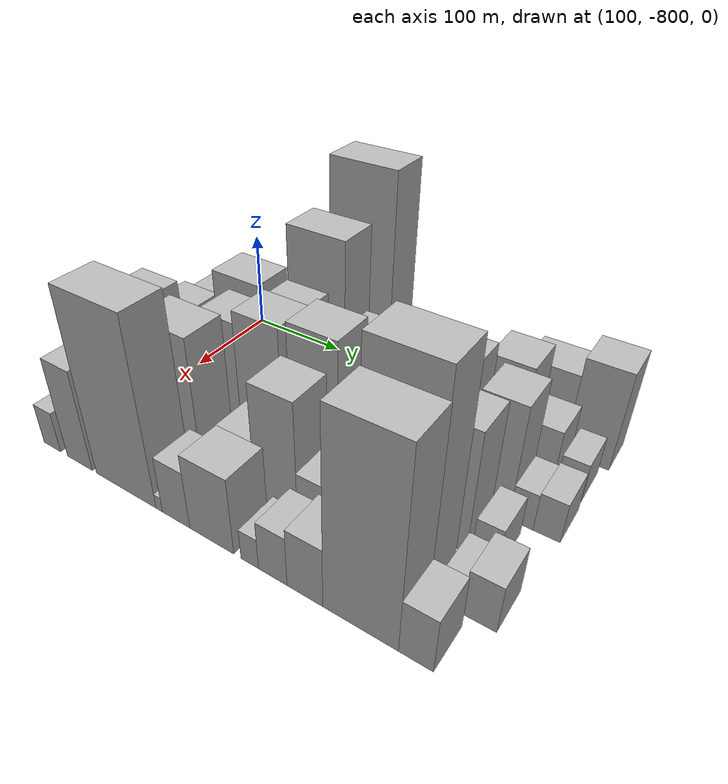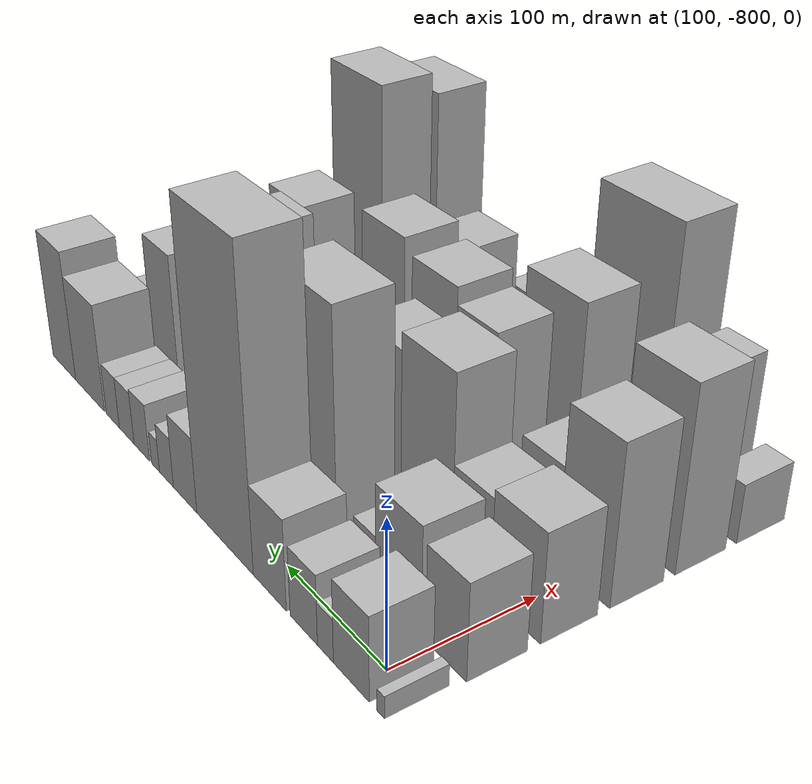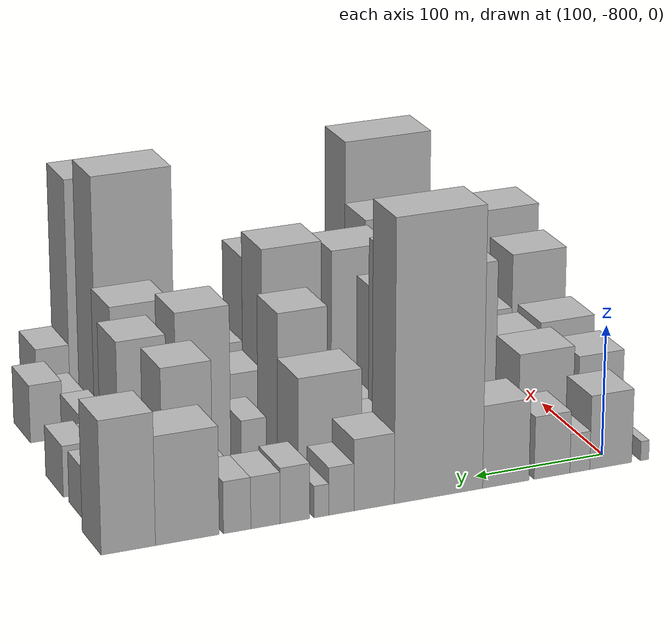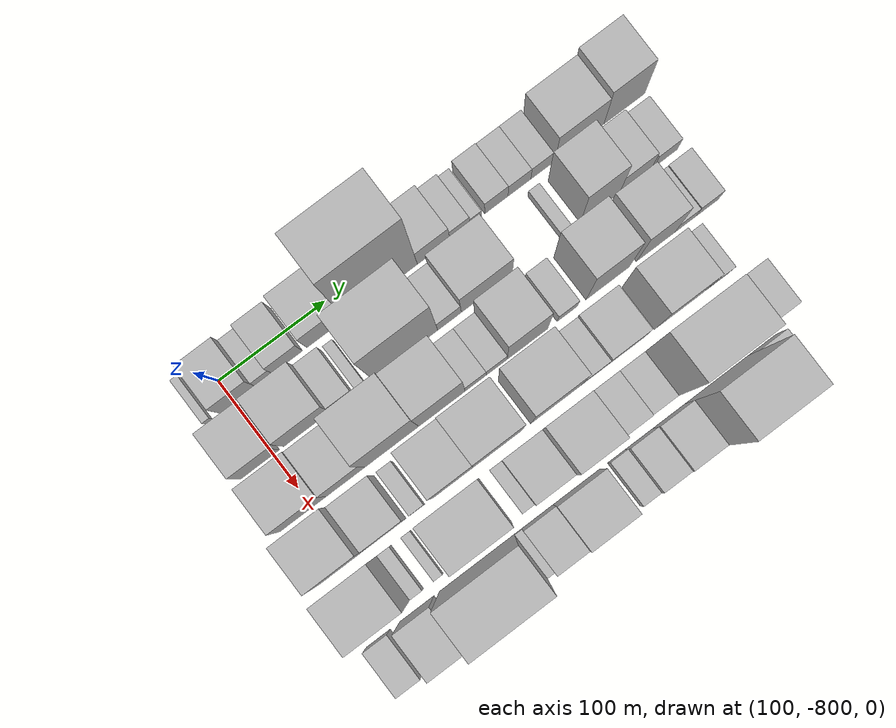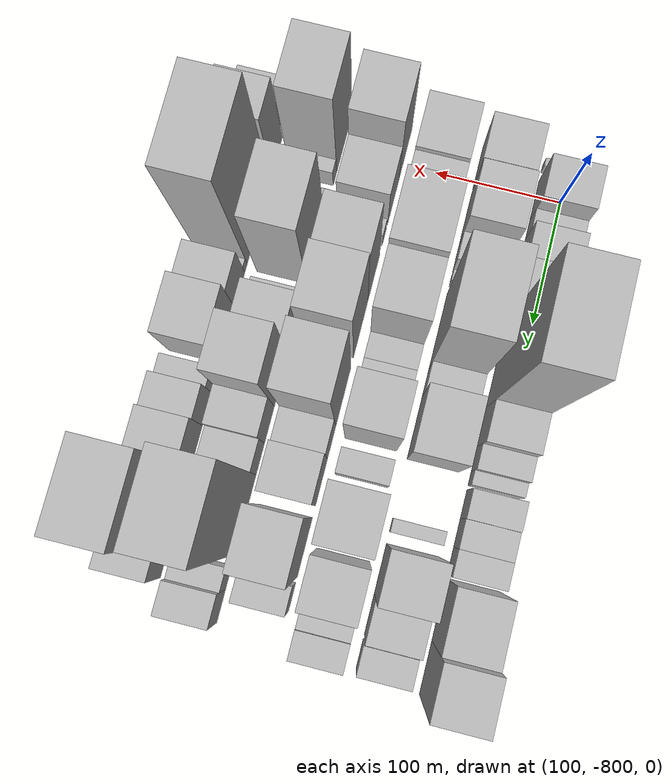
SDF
<sdf version="1.6">
 <world name="default">
  <model name="building_1">
   <static>1</static>
   <pose>100.0000 -823.7062 0 0.000000 0.000000 0.000000</pose>
   <link name="link">
    <pose>0 0 7.50 0 0 0</pose>
    <collision name="collision"><geometry><box><size>40.0000 6.5875 15.0000</size></box></geometry></collision>
    <visual name="visual">
     <cast_shadows>0</cast_shadows>
     <geometry><box><size>40.0000 6.5875 15.0000</size></box></geometry>
     <material>
      <script>
       <uri>model://HANNAS_wall/materials/scripts</uri>
       <uri>model://HANNAS_wall/materials/textures</uri>
       <name>vrc/HANNAS_wall</name>
      </script>
     </material>
    </visual>
   </link>
  </model>
  <model name="building_2">
   <static>1</static>
   <pose>100.0000 -796.6265 0 0.000000 0.000000 0.000000</pose>
   <link name="link">
    <pose>0 0 28.50 0 0 0</pose>
    <collision name="collision"><geometry><box><size>40.0000 33.5720 57.0000</size></box></geometry></collision>
    <visual name="visual">
     <cast_shadows>0</cast_shadows>
     <geometry><box><size>40.0000 33.5720 57.0000</size></box></geometry>
     <material>
      <script>
       <uri>model://HANNAS_wall/materials/scripts</uri>
       <uri>model://HANNAS_wall/materials/textures</uri>
       <name>vrc/HANNAS_wall</name>
      </script>
     </material>
    </visual>
   </link>
  </model>
  <model name="building_3">
   <static>1</static>
   <pose>100.0000 -771.9704 0 0.000000 0.000000 0.000000</pose>
   <link name="link">
    <pose>0 0 15.00 0 0 0</pose>
    <collision name="collision"><geometry><box><size>40.0000 15.7402 30.0000</size></box></geometry></collision>
    <visual name="visual">
     <cast_shadows>0</cast_shadows>
     <geometry><box><size>40.0000 15.7402 30.0000</size></box></geometry>
     <material>
      <script>
       <uri>model://HANNAS_wall/materials/scripts</uri>
       <uri>model://HANNAS_wall/materials/textures</uri>
       <name>vrc/HANNAS_wall</name>
      </script>
     </material>
    </visual>
   </link>
  </model>
  <model name="building_4">
   <static>1</static>
   <pose>100.0000 -750.0420 0 0.000000 0.000000 0.000000</pose>
   <link name="link">
    <pose>0 0 24.00 0 0 0</pose>
    <collision name="collision"><geometry><box><size>40.0000 28.1167 48.0000</size></box></geometry></collision>
    <visual name="visual">
     <cast_shadows>0</cast_shadows>
     <geometry><box><size>40.0000 28.1167 48.0000</size></box></geometry>
     <material>
      <script>
       <uri>model://HANNAS_wall/materials/scripts</uri>
       <uri>model://HANNAS_wall/materials/textures</uri>
       <name>vrc/HANNAS_wall</name>
      </script>
     </material>
    </visual>
   </link>
  </model>
  <model name="building_5">
   <static>1</static>
   <pose>100.0000 -713.9191 0 0.000000 0.000000 0.000000</pose>
   <link name="link">
    <pose>0 0 31.50 0 0 0</pose>
    <collision name="collision"><geometry><box><size>40.0000 36.1291 63.0000</size></box></geometry></collision>
    <visual name="visual">
     <cast_shadows>0</cast_shadows>
     <geometry><box><size>40.0000 36.1291 63.0000</size></box></geometry>
     <material>
      <script>
       <uri>model://HANNAS_wall/materials/scripts</uri>
       <uri>model://HANNAS_wall/materials/textures</uri>
       <name>vrc/HANNAS_wall</name>
      </script>
     </material>
    </visual>
   </link>
  </model>
  <model name="building_6">
   <static>1</static>
   <pose>100.0000 -661.9510 0 0.000000 0.000000 0.000000</pose>
   <link name="link">
    <pose>0 0 106.50 0 0 0</pose>
    <collision name="collision"><geometry><box><size>40.0000 67.8070 213.0000</size></box></geometry></collision>
    <visual name="visual">
     <cast_shadows>0</cast_shadows>
     <geometry><box><size>40.0000 67.8070 213.0000</size></box></geometry>
     <material>
      <script>
       <uri>model://HANNAS_wall/materials/scripts</uri>
       <uri>model://HANNAS_wall/materials/textures</uri>
       <name>vrc/HANNAS_wall</name>
      </script>
     </material>
    </visual>
   </link>
  </model>
  <model name="building_7">
   <static>1</static>
   <pose>100.0000 -612.7542 0 0.000000 0.000000 0.000000</pose>
   <link name="link">
    <pose>0 0 27.00 0 0 0</pose>
    <collision name="collision"><geometry><box><size>40.0000 30.5866 54.0000</size></box></geometry></collision>
    <visual name="visual">
     <cast_shadows>0</cast_shadows>
     <geometry><box><size>40.0000 30.5866 54.0000</size></box></geometry>
     <material>
      <script>
       <uri>model://HANNAS_wall/materials/scripts</uri>
       <uri>model://HANNAS_wall/materials/textures</uri>
       <name>vrc/HANNAS_wall</name>
      </script>
     </material>
    </visual>
   </link>
  </model>
  <model name="building_8">
   <static>1</static>
   <pose>100.0000 -588.0080 0 0.000000 0.000000 0.000000</pose>
   <link name="link">
    <pose>0 0 18.00 0 0 0</pose>
    <collision name="collision"><geometry><box><size>40.0000 18.9059 36.0000</size></box></geometry></collision>
    <visual name="visual">
     <cast_shadows>0</cast_shadows>
     <geometry><box><size>40.0000 18.9059 36.0000</size></box></geometry>
     <material>
      <script>
       <uri>model://HANNAS_wall/materials/scripts</uri>
       <uri>model://HANNAS_wall/materials/textures</uri>
       <name>vrc/HANNAS_wall</name>
      </script>
     </material>
    </visual>
   </link>
  </model>
  <model name="building_9">
   <static>1</static>
   <pose>100.0000 -573.0209 0 0.000000 0.000000 0.000000</pose>
   <link name="link">
    <pose>0 0 12.00 0 0 0</pose>
    <collision name="collision"><geometry><box><size>40.0000 11.0684 24.0000</size></box></geometry></collision>
    <visual name="visual">
     <cast_shadows>0</cast_shadows>
     <geometry><box><size>40.0000 11.0684 24.0000</size></box></geometry>
     <material>
      <script>
       <uri>model://HANNAS_wall/materials/scripts</uri>
       <uri>model://HANNAS_wall/materials/textures</uri>
       <name>vrc/HANNAS_wall</name>
      </script>
     </material>
    </visual>
   </link>
  </model>
  <model name="building_10">
   <static>1</static>
   <pose>100.0000 -553.4722 0 0.000000 0.000000 0.000000</pose>
   <link name="link">
    <pose>0 0 21.00 0 0 0</pose>
    <collision name="collision"><geometry><box><size>40.0000 22.0288 42.0000</size></box></geometry></collision>
    <visual name="visual">
     <cast_shadows>0</cast_shadows>
     <geometry><box><size>40.0000 22.0288 42.0000</size></box></geometry>
     <material>
      <script>
       <uri>model://HANNAS_wall/materials/scripts</uri>
       <uri>model://HANNAS_wall/materials/textures</uri>
       <name>vrc/HANNAS_wall</name>
      </script>
     </material>
    </visual>
   </link>
  </model>
  <model name="building_11">
   <static>1</static>
   <pose>100.0000 -531.5921 0 0.000000 0.000000 0.000000</pose>
   <link name="link">
    <pose>0 0 19.50 0 0 0</pose>
    <collision name="collision"><geometry><box><size>40.0000 21.7315 39.0000</size></box></geometry></collision>
    <visual name="visual">
     <cast_shadows>0</cast_shadows>
     <geometry><box><size>40.0000 21.7315 39.0000</size></box></geometry>
     <material>
      <script>
       <uri>model://HANNAS_wall/materials/scripts</uri>
       <uri>model://HANNAS_wall/materials/textures</uri>
       <name>vrc/HANNAS_wall</name>
      </script>
     </material>
    </visual>
   </link>
  </model>
  <model name="building_12">
   <static>1</static>
   <pose>100.0000 -510.6498 0 0.000000 0.000000 0.000000</pose>
   <link name="link">
    <pose>0 0 19.50 0 0 0</pose>
    <collision name="collision"><geometry><box><size>40.0000 20.1530 39.0000</size></box></geometry></collision>
    <visual name="visual">
     <cast_shadows>0</cast_shadows>
     <geometry><box><size>40.0000 20.1530 39.0000</size></box></geometry>
     <material>
      <script>
       <uri>model://HANNAS_wall/materials/scripts</uri>
       <uri>model://HANNAS_wall/materials/textures</uri>
       <name>vrc/HANNAS_wall</name>
      </script>
     </material>
    </visual>
   </link>
  </model>
  <model name="building_13">
   <static>1</static>
   <pose>100.0000 -474.3793 0 0.000000 0.000000 0.000000</pose>
   <link name="link">
    <pose>0 0 40.50 0 0 0</pose>
    <collision name="collision"><geometry><box><size>40.0000 46.3880 81.0000</size></box></geometry></collision>
    <visual name="visual">
     <cast_shadows>0</cast_shadows>
     <geometry><box><size>40.0000 46.3880 81.0000</size></box></geometry>
     <material>
      <script>
       <uri>model://HANNAS_wall/materials/scripts</uri>
       <uri>model://HANNAS_wall/materials/textures</uri>
       <name>vrc/HANNAS_wall</name>
      </script>
     </material>
    </visual>
   </link>
  </model>
  <model name="building_14">
   <static>1</static>
   <pose>100.0000 -431.7051 0 0.000000 0.000000 0.000000</pose>
   <link name="link">
    <pose>0 0 49.50 0 0 0</pose>
    <collision name="collision"><geometry><box><size>40.0000 38.9603 99.0000</size></box></geometry></collision>
    <visual name="visual">
     <cast_shadows>0</cast_shadows>
     <geometry><box><size>40.0000 38.9603 99.0000</size></box></geometry>
     <material>
      <script>
       <uri>model://HANNAS_wall/materials/scripts</uri>
       <uri>model://HANNAS_wall/materials/textures</uri>
       <name>vrc/HANNAS_wall</name>
      </script>
     </material>
    </visual>
   </link>
  </model>
  <model name="building_47">
   <static>1</static>
   <pose>149.0000 -811.9938 0 0.000000 0.000000 0.000000</pose>
   <link name="link">
    <pose>0 0 33.00 0 0 0</pose>
    <collision name="collision"><geometry><box><size>40.0000 36.0124 66.0000</size></box></geometry></collision>
    <visual name="visual">
     <cast_shadows>0</cast_shadows>
     <geometry><box><size>40.0000 36.0124 66.0000</size></box></geometry>
     <material>
      <script>
       <uri>model://HANNAS_wall/materials/scripts</uri>
       <uri>model://HANNAS_wall/materials/textures</uri>
       <name>vrc/HANNAS_wall</name>
      </script>
     </material>
    </visual>
   </link>
  </model>
  <model name="building_48">
   <static>1</static>
   <pose>149.0000 -768.1969 0 0.000000 0.000000 0.000000</pose>
   <link name="link">
    <pose>0 0 37.50 0 0 0</pose>
    <collision name="collision"><geometry><box><size>40.0000 43.5815 75.0000</size></box></geometry></collision>
    <visual name="visual">
     <cast_shadows>0</cast_shadows>
     <geometry><box><size>40.0000 43.5815 75.0000</size></box></geometry>
     <material>
      <script>
       <uri>model://HANNAS_wall/materials/scripts</uri>
       <uri>model://HANNAS_wall/materials/textures</uri>
       <name>vrc/HANNAS_wall</name>
      </script>
     </material>
    </visual>
   </link>
  </model>
  <model name="building_49">
   <static>1</static>
   <pose>149.0000 -735.5091 0 0.000000 0.000000 0.000000</pose>
   <link name="link">
    <pose>0 0 19.50 0 0 0</pose>
    <collision name="collision"><geometry><box><size>40.0000 21.7940 39.0000</size></box></geometry></collision>
    <visual name="visual">
     <cast_shadows>0</cast_shadows>
     <geometry><box><size>40.0000 21.7940 39.0000</size></box></geometry>
     <material>
      <script>
       <uri>model://HANNAS_wall/materials/scripts</uri>
       <uri>model://HANNAS_wall/materials/textures</uri>
       <name>vrc/HANNAS_wall</name>
      </script>
     </material>
    </visual>
   </link>
  </model>
  <model name="building_50">
   <static>1</static>
   <pose>149.0000 -717.2508 0 0.000000 0.000000 0.000000</pose>
   <link name="link">
    <pose>0 0 10.50 0 0 0</pose>
    <collision name="collision"><geometry><box><size>40.0000 8.7227 21.0000</size></box></geometry></collision>
    <visual name="visual">
     <cast_shadows>0</cast_shadows>
     <geometry><box><size>40.0000 8.7227 21.0000</size></box></geometry>
     <material>
      <script>
       <uri>model://HANNAS_wall/materials/scripts</uri>
       <uri>model://HANNAS_wall/materials/textures</uri>
       <name>vrc/HANNAS_wall</name>
      </script>
     </material>
    </visual>
   </link>
  </model>
  <model name="building_51">
   <static>1</static>
   <pose>149.0000 -676.4024 0 0.000000 0.000000 0.000000</pose>
   <link name="link">
    <pose>0 0 82.50 0 0 0</pose>
    <collision name="collision"><geometry><box><size>40.0000 60.9741 165.0000</size></box></geometry></collision>
    <visual name="visual">
     <cast_shadows>0</cast_shadows>
     <geometry><box><size>40.0000 60.9741 165.0000</size></box></geometry>
     <material>
      <script>
       <uri>model://HANNAS_wall/materials/scripts</uri>
       <uri>model://HANNAS_wall/materials/textures</uri>
       <name>vrc/HANNAS_wall</name>
      </script>
     </material>
    </visual>
   </link>
  </model>
  <model name="building_52">
   <static>1</static>
   <pose>149.0000 -634.8059 0 0.000000 0.000000 0.000000</pose>
   <link name="link">
    <pose>0 0 21.00 0 0 0</pose>
    <collision name="collision"><geometry><box><size>40.0000 22.2190 42.0000</size></box></geometry></collision>
    <visual name="visual">
     <cast_shadows>0</cast_shadows>
     <geometry><box><size>40.0000 22.2190 42.0000</size></box></geometry>
     <material>
      <script>
       <uri>model://HANNAS_wall/materials/scripts</uri>
       <uri>model://HANNAS_wall/materials/textures</uri>
       <name>vrc/HANNAS_wall</name>
      </script>
     </material>
    </visual>
   </link>
  </model>
  <model name="building_53">
   <static>1</static>
   <pose>149.0000 -599.6774 0 0.000000 0.000000 0.000000</pose>
   <link name="link">
    <pose>0 0 42.00 0 0 0</pose>
    <collision name="collision"><geometry><box><size>40.0000 48.0381 84.0000</size></box></geometry></collision>
    <visual name="visual">
     <cast_shadows>0</cast_shadows>
     <geometry><box><size>40.0000 48.0381 84.0000</size></box></geometry>
     <material>
      <script>
       <uri>model://HANNAS_wall/materials/scripts</uri>
       <uri>model://HANNAS_wall/materials/textures</uri>
       <name>vrc/HANNAS_wall</name>
      </script>
     </material>
    </visual>
   </link>
  </model>
  <model name="building_54">
   <static>1</static>
   <pose>149.0000 -525.3291 0 0.000000 0.000000 0.000000</pose>
   <link name="link">
    <pose>0 0 10.50 0 0 0</pose>
    <collision name="collision"><geometry><box><size>40.0000 10.2195 21.0000</size></box></geometry></collision>
    <visual name="visual">
     <cast_shadows>0</cast_shadows>
     <geometry><box><size>40.0000 10.2195 21.0000</size></box></geometry>
     <material>
      <script>
       <uri>model://HANNAS_wall/materials/scripts</uri>
       <uri>model://HANNAS_wall/materials/textures</uri>
       <name>vrc/HANNAS_wall</name>
      </script>
     </material>
    </visual>
   </link>
  </model>
  <model name="building_55">
   <static>1</static>
   <pose>149.0000 -492.6339 0 0.000000 0.000000 0.000000</pose>
   <link name="link">
    <pose>0 0 54.00 0 0 0</pose>
    <collision name="collision"><geometry><box><size>40.0000 37.1709 108.0000</size></box></geometry></collision>
    <visual name="visual">
     <cast_shadows>0</cast_shadows>
     <geometry><box><size>40.0000 37.1709 108.0000</size></box></geometry>
     <material>
      <script>
       <uri>model://HANNAS_wall/materials/scripts</uri>
       <uri>model://HANNAS_wall/materials/textures</uri>
       <name>vrc/HANNAS_wall</name>
      </script>
     </material>
    </visual>
   </link>
  </model>
  <model name="building_56">
   <static>1</static>
   <pose>149.0000 -458.8344 0 0.000000 0.000000 0.000000</pose>
   <link name="link">
    <pose>0 0 30.00 0 0 0</pose>
    <collision name="collision"><geometry><box><size>40.0000 30.4283 60.0000</size></box></geometry></collision>
    <visual name="visual">
     <cast_shadows>0</cast_shadows>
     <geometry><box><size>40.0000 30.4283 60.0000</size></box></geometry>
     <material>
      <script>
       <uri>model://HANNAS_wall/materials/scripts</uri>
       <uri>model://HANNAS_wall/materials/textures</uri>
       <name>vrc/HANNAS_wall</name>
      </script>
     </material>
    </visual>
   </link>
  </model>
  <model name="building_57">
   <static>1</static>
   <pose>149.0000 -429.7689 0 0.000000 0.000000 0.000000</pose>
   <link name="link">
    <pose>0 0 19.50 0 0 0</pose>
    <collision name="collision"><geometry><box><size>40.0000 21.7026 39.0000</size></box></geometry></collision>
    <visual name="visual">
     <cast_shadows>0</cast_shadows>
     <geometry><box><size>40.0000 21.7026 39.0000</size></box></geometry>
     <material>
      <script>
       <uri>model://HANNAS_wall/materials/scripts</uri>
       <uri>model://HANNAS_wall/materials/textures</uri>
       <name>vrc/HANNAS_wall</name>
      </script>
     </material>
    </visual>
   </link>
  </model>
  <model name="building_90">
   <static>1</static>
   <pose>198.0000 -808.3081 0 0.000000 0.000000 0.000000</pose>
   <link name="link">
    <pose>0 0 37.50 0 0 0</pose>
    <collision name="collision"><geometry><box><size>40.0000 43.3838 75.0000</size></box></geometry></collision>
    <visual name="visual">
     <cast_shadows>0</cast_shadows>
     <geometry><box><size>40.0000 43.3838 75.0000</size></box></geometry>
     <material>
      <script>
       <uri>model://HANNAS_wall/materials/scripts</uri>
       <uri>model://HANNAS_wall/materials/textures</uri>
       <name>vrc/HANNAS_wall</name>
      </script>
     </material>
    </visual>
   </link>
  </model>
  <model name="building_91">
   <static>1</static>
   <pose>198.0000 -768.8196 0 0.000000 0.000000 0.000000</pose>
   <link name="link">
    <pose>0 0 34.50 0 0 0</pose>
    <collision name="collision"><geometry><box><size>40.0000 35.5933 69.0000</size></box></geometry></collision>
    <visual name="visual">
     <cast_shadows>0</cast_shadows>
     <geometry><box><size>40.0000 35.5933 69.0000</size></box></geometry>
     <material>
      <script>
       <uri>model://HANNAS_wall/materials/scripts</uri>
       <uri>model://HANNAS_wall/materials/textures</uri>
       <name>vrc/HANNAS_wall</name>
      </script>
     </material>
    </visual>
   </link>
  </model>
  <model name="building_92">
   <static>1</static>
   <pose>198.0000 -725.7471 0 0.000000 0.000000 0.000000</pose>
   <link name="link">
    <pose>0 0 64.50 0 0 0</pose>
    <collision name="collision"><geometry><box><size>40.0000 50.5516 129.0000</size></box></geometry></collision>
    <visual name="visual">
     <cast_shadows>0</cast_shadows>
     <geometry><box><size>40.0000 50.5516 129.0000</size></box></geometry>
     <material>
      <script>
       <uri>model://HANNAS_wall/materials/scripts</uri>
       <uri>model://HANNAS_wall/materials/textures</uri>
       <name>vrc/HANNAS_wall</name>
      </script>
     </material>
    </visual>
   </link>
  </model>
  <model name="building_93">
   <static>1</static>
   <pose>198.0000 -678.8159 0 0.000000 0.000000 0.000000</pose>
   <link name="link">
    <pose>0 0 58.50 0 0 0</pose>
    <collision name="collision"><geometry><box><size>40.0000 43.3109 117.0000</size></box></geometry></collision>
    <visual name="visual">
     <cast_shadows>0</cast_shadows>
     <geometry><box><size>40.0000 43.3109 117.0000</size></box></geometry>
     <material>
      <script>
       <uri>model://HANNAS_wall/materials/scripts</uri>
       <uri>model://HANNAS_wall/materials/textures</uri>
       <name>vrc/HANNAS_wall</name>
      </script>
     </material>
    </visual>
   </link>
  </model>
  <model name="building_94">
   <static>1</static>
   <pose>198.0000 -647.2400 0 0.000000 0.000000 0.000000</pose>
   <link name="link">
    <pose>0 0 18.00 0 0 0</pose>
    <collision name="collision"><geometry><box><size>40.0000 19.8408 36.0000</size></box></geometry></collision>
    <visual name="visual">
     <cast_shadows>0</cast_shadows>
     <geometry><box><size>40.0000 19.8408 36.0000</size></box></geometry>
     <material>
      <script>
       <uri>model://HANNAS_wall/materials/scripts</uri>
       <uri>model://HANNAS_wall/materials/textures</uri>
       <name>vrc/HANNAS_wall</name>
      </script>
     </material>
    </visual>
   </link>
  </model>
  <model name="building_95">
   <static>1</static>
   <pose>198.0000 -627.5197 0 0.000000 0.000000 0.000000</pose>
   <link name="link">
    <pose>0 0 18.00 0 0 0</pose>
    <collision name="collision"><geometry><box><size>40.0000 19.5999 36.0000</size></box></geometry></collision>
    <visual name="visual">
     <cast_shadows>0</cast_shadows>
     <geometry><box><size>40.0000 19.5999 36.0000</size></box></geometry>
     <material>
      <script>
       <uri>model://HANNAS_wall/materials/scripts</uri>
       <uri>model://HANNAS_wall/materials/textures</uri>
       <name>vrc/HANNAS_wall</name>
      </script>
     </material>
    </visual>
   </link>
  </model>
  <model name="building_96">
   <static>1</static>
   <pose>198.0000 -598.6498 0 0.000000 0.000000 0.000000</pose>
   <link name="link">
    <pose>0 0 57.00 0 0 0</pose>
    <collision name="collision"><geometry><box><size>40.0000 38.1397 114.0000</size></box></geometry></collision>
    <visual name="visual">
     <cast_shadows>0</cast_shadows>
     <geometry><box><size>40.0000 38.1397 114.0000</size></box></geometry>
     <material>
      <script>
       <uri>model://HANNAS_wall/materials/scripts</uri>
       <uri>model://HANNAS_wall/materials/textures</uri>
       <name>vrc/HANNAS_wall</name>
      </script>
     </material>
    </visual>
   </link>
  </model>
  <model name="building_97">
   <static>1</static>
   <pose>198.0000 -560.9689 0 0.000000 0.000000 0.000000</pose>
   <link name="link">
    <pose>0 0 18.00 0 0 0</pose>
    <collision name="collision"><geometry><box><size>40.0000 19.2221 36.0000</size></box></geometry></collision>
    <visual name="visual">
     <cast_shadows>0</cast_shadows>
     <geometry><box><size>40.0000 19.2221 36.0000</size></box></geometry>
     <material>
      <script>
       <uri>model://HANNAS_wall/materials/scripts</uri>
       <uri>model://HANNAS_wall/materials/textures</uri>
       <name>vrc/HANNAS_wall</name>
      </script>
     </material>
    </visual>
   </link>
  </model>
  <model name="building_98">
   <static>1</static>
   <pose>198.0000 -522.9137 0 0.000000 0.000000 0.000000</pose>
   <link name="link">
    <pose>0 0 63.00 0 0 0</pose>
    <collision name="collision"><geometry><box><size>40.0000 40.8884 126.0000</size></box></geometry></collision>
    <visual name="visual">
     <cast_shadows>0</cast_shadows>
     <geometry><box><size>40.0000 40.8884 126.0000</size></box></geometry>
     <material>
      <script>
       <uri>model://HANNAS_wall/materials/scripts</uri>
       <uri>model://HANNAS_wall/materials/textures</uri>
       <name>vrc/HANNAS_wall</name>
      </script>
     </material>
    </visual>
   </link>
  </model>
  <model name="building_99">
   <static>1</static>
   <pose>198.0000 -477.2465 0 0.000000 0.000000 0.000000</pose>
   <link name="link">
    <pose>0 0 55.50 0 0 0</pose>
    <collision name="collision"><geometry><box><size>40.0000 36.4458 111.0000</size></box></geometry></collision>
    <visual name="visual">
     <cast_shadows>0</cast_shadows>
     <geometry><box><size>40.0000 36.4458 111.0000</size></box></geometry>
     <material>
      <script>
       <uri>model://HANNAS_wall/materials/scripts</uri>
       <uri>model://HANNAS_wall/materials/textures</uri>
       <name>vrc/HANNAS_wall</name>
      </script>
     </material>
    </visual>
   </link>
  </model>
  <model name="building_100">
   <static>1</static>
   <pose>198.0000 -449.1602 0 0.000000 0.000000 0.000000</pose>
   <link name="link">
    <pose>0 0 18.00 0 0 0</pose>
    <collision name="collision"><geometry><box><size>40.0000 19.7269 36.0000</size></box></geometry></collision>
    <visual name="visual">
     <cast_shadows>0</cast_shadows>
     <geometry><box><size>40.0000 19.7269 36.0000</size></box></geometry>
     <material>
      <script>
       <uri>model://HANNAS_wall/materials/scripts</uri>
       <uri>model://HANNAS_wall/materials/textures</uri>
       <name>vrc/HANNAS_wall</name>
      </script>
     </material>
    </visual>
   </link>
  </model>
  <model name="building_101">
   <static>1</static>
   <pose>198.0000 -428.5297 0 0.000000 0.000000 0.000000</pose>
   <link name="link">
    <pose>0 0 19.50 0 0 0</pose>
    <collision name="collision"><geometry><box><size>40.0000 21.5340 39.0000</size></box></geometry></collision>
    <visual name="visual">
     <cast_shadows>0</cast_shadows>
     <geometry><box><size>40.0000 21.5340 39.0000</size></box></geometry>
     <material>
      <script>
       <uri>model://HANNAS_wall/materials/scripts</uri>
       <uri>model://HANNAS_wall/materials/textures</uri>
       <name>vrc/HANNAS_wall</name>
      </script>
     </material>
    </visual>
   </link>
  </model>
  <model name="building_139">
   <static>1</static>
   <pose>247.0000 -808.0478 0 0.000000 0.000000 0.000000</pose>
   <link name="link">
    <pose>0 0 55.50 0 0 0</pose>
    <collision name="collision"><geometry><box><size>40.0000 43.9044 111.0000</size></box></geometry></collision>
    <visual name="visual">
     <cast_shadows>0</cast_shadows>
     <geometry><box><size>40.0000 43.9044 111.0000</size></box></geometry>
     <material>
      <script>
       <uri>model://HANNAS_wall/materials/scripts</uri>
       <uri>model://HANNAS_wall/materials/textures</uri>
       <name>vrc/HANNAS_wall</name>
      </script>
     </material>
    </visual>
   </link>
  </model>
  <model name="building_140">
   <static>1</static>
   <pose>247.0000 -767.7596 0 0.000000 0.000000 0.000000</pose>
   <link name="link">
    <pose>0 0 34.50 0 0 0</pose>
    <collision name="collision"><geometry><box><size>40.0000 36.6720 69.0000</size></box></geometry></collision>
    <visual name="visual">
     <cast_shadows>0</cast_shadows>
     <geometry><box><size>40.0000 36.6720 69.0000</size></box></geometry>
     <material>
      <script>
       <uri>model://HANNAS_wall/materials/scripts</uri>
       <uri>model://HANNAS_wall/materials/textures</uri>
       <name>vrc/HANNAS_wall</name>
      </script>
     </material>
    </visual>
   </link>
  </model>
  <model name="building_141">
   <static>1</static>
   <pose>247.0000 -738.7030 0 0.000000 0.000000 0.000000</pose>
   <link name="link">
    <pose>0 0 13.50 0 0 0</pose>
    <collision name="collision"><geometry><box><size>40.0000 13.4412 27.0000</size></box></geometry></collision>
    <visual name="visual">
     <cast_shadows>0</cast_shadows>
     <geometry><box><size>40.0000 13.4412 27.0000</size></box></geometry>
     <material>
      <script>
       <uri>model://HANNAS_wall/materials/scripts</uri>
       <uri>model://HANNAS_wall/materials/textures</uri>
       <name>vrc/HANNAS_wall</name>
      </script>
     </material>
    </visual>
   </link>
  </model>
  <model name="building_142">
   <static>1</static>
   <pose>247.0000 -705.0508 0 0.000000 0.000000 0.000000</pose>
   <link name="link">
    <pose>0 0 61.50 0 0 0</pose>
    <collision name="collision"><geometry><box><size>40.0000 37.8633 123.0000</size></box></geometry></collision>
    <visual name="visual">
     <cast_shadows>0</cast_shadows>
     <geometry><box><size>40.0000 37.8633 123.0000</size></box></geometry>
     <material>
      <script>
       <uri>model://HANNAS_wall/materials/scripts</uri>
       <uri>model://HANNAS_wall/materials/textures</uri>
       <name>vrc/HANNAS_wall</name>
      </script>
     </material>
    </visual>
   </link>
  </model>
  <model name="building_143">
   <static>1</static>
   <pose>247.0000 -663.5265 0 0.000000 0.000000 0.000000</pose>
   <link name="link">
    <pose>0 0 67.50 0 0 0</pose>
    <collision name="collision"><geometry><box><size>40.0000 45.1852 135.0000</size></box></geometry></collision>
    <visual name="visual">
     <cast_shadows>0</cast_shadows>
     <geometry><box><size>40.0000 45.1852 135.0000</size></box></geometry>
     <material>
      <script>
       <uri>model://HANNAS_wall/materials/scripts</uri>
       <uri>model://HANNAS_wall/materials/textures</uri>
       <name>vrc/HANNAS_wall</name>
      </script>
     </material>
    </visual>
   </link>
  </model>
  <model name="building_144">
   <static>1</static>
   <pose>247.0000 -609.8479 0 0.000000 0.000000 0.000000</pose>
   <link name="link">
    <pose>0 0 72.00 0 0 0</pose>
    <collision name="collision"><geometry><box><size>40.0000 46.1719 144.0000</size></box></geometry></collision>
    <visual name="visual">
     <cast_shadows>0</cast_shadows>
     <geometry><box><size>40.0000 46.1719 144.0000</size></box></geometry>
     <material>
      <script>
       <uri>model://HANNAS_wall/materials/scripts</uri>
       <uri>model://HANNAS_wall/materials/textures</uri>
       <name>vrc/HANNAS_wall</name>
      </script>
     </material>
    </visual>
   </link>
  </model>
  <model name="building_145">
   <static>1</static>
   <pose>247.0000 -573.9612 0 0.000000 0.000000 0.000000</pose>
   <link name="link">
    <pose>0 0 25.50 0 0 0</pose>
    <collision name="collision"><geometry><box><size>40.0000 25.6016 51.0000</size></box></geometry></collision>
    <visual name="visual">
     <cast_shadows>0</cast_shadows>
     <geometry><box><size>40.0000 25.6016 51.0000</size></box></geometry>
     <material>
      <script>
       <uri>model://HANNAS_wall/materials/scripts</uri>
       <uri>model://HANNAS_wall/materials/textures</uri>
       <name>vrc/HANNAS_wall</name>
      </script>
     </material>
    </visual>
   </link>
  </model>
  <model name="building_146">
   <static>1</static>
   <pose>247.0000 -543.1721 0 0.000000 0.000000 0.000000</pose>
   <link name="link">
    <pose>0 0 31.50 0 0 0</pose>
    <collision name="collision"><geometry><box><size>40.0000 35.9766 63.0000</size></box></geometry></collision>
    <visual name="visual">
     <cast_shadows>0</cast_shadows>
     <geometry><box><size>40.0000 35.9766 63.0000</size></box></geometry>
     <material>
      <script>
       <uri>model://HANNAS_wall/materials/scripts</uri>
       <uri>model://HANNAS_wall/materials/textures</uri>
       <name>vrc/HANNAS_wall</name>
      </script>
     </material>
    </visual>
   </link>
  </model>
  <model name="building_147">
   <static>1</static>
   <pose>247.0000 -493.7229 0 0.000000 0.000000 0.000000</pose>
   <link name="link">
    <pose>0 0 58.50 0 0 0</pose>
    <collision name="collision"><geometry><box><size>40.0000 44.9218 117.0000</size></box></geometry></collision>
    <visual name="visual">
     <cast_shadows>0</cast_shadows>
     <geometry><box><size>40.0000 44.9218 117.0000</size></box></geometry>
     <material>
      <script>
       <uri>model://HANNAS_wall/materials/scripts</uri>
       <uri>model://HANNAS_wall/materials/textures</uri>
       <name>vrc/HANNAS_wall</name>
      </script>
     </material>
    </visual>
   </link>
  </model>
  <model name="building_148">
   <static>1</static>
   <pose>247.0000 -456.5279 0 0.000000 0.000000 0.000000</pose>
   <link name="link">
    <pose>0 0 19.50 0 0 0</pose>
    <collision name="collision"><geometry><box><size>40.0000 21.4684 39.0000</size></box></geometry></collision>
    <visual name="visual">
     <cast_shadows>0</cast_shadows>
     <geometry><box><size>40.0000 21.4684 39.0000</size></box></geometry>
     <material>
      <script>
       <uri>model://HANNAS_wall/materials/scripts</uri>
       <uri>model://HANNAS_wall/materials/textures</uri>
       <name>vrc/HANNAS_wall</name>
      </script>
     </material>
    </visual>
   </link>
  </model>
  <model name="building_184">
   <static>1</static>
   <pose>296.0000 -805.7007 0 0.000000 0.000000 0.000000</pose>
   <link name="link">
    <pose>0 0 64.50 0 0 0</pose>
    <collision name="collision"><geometry><box><size>40.0000 48.5985 129.0000</size></box></geometry></collision>
    <visual name="visual">
     <cast_shadows>0</cast_shadows>
     <geometry><box><size>40.0000 48.5985 129.0000</size></box></geometry>
     <material>
      <script>
       <uri>model://HANNAS_wall/materials/scripts</uri>
       <uri>model://HANNAS_wall/materials/textures</uri>
       <name>vrc/HANNAS_wall</name>
      </script>
     </material>
    </visual>
   </link>
  </model>
  <model name="building_185">
   <static>1</static>
   <pose>296.0000 -775.8276 0 0.000000 0.000000 0.000000</pose>
   <link name="link">
    <pose>0 0 13.50 0 0 0</pose>
    <collision name="collision"><geometry><box><size>40.0000 11.1477 27.0000</size></box></geometry></collision>
    <visual name="visual">
     <cast_shadows>0</cast_shadows>
     <geometry><box><size>40.0000 11.1477 27.0000</size></box></geometry>
     <material>
      <script>
       <uri>model://HANNAS_wall/materials/scripts</uri>
       <uri>model://HANNAS_wall/materials/textures</uri>
       <name>vrc/HANNAS_wall</name>
      </script>
     </material>
    </visual>
   </link>
  </model>
  <model name="building_186">
   <static>1</static>
   <pose>296.0000 -756.0726 0 0.000000 0.000000 0.000000</pose>
   <link name="link">
    <pose>0 0 9.00 0 0 0</pose>
    <collision name="collision"><geometry><box><size>40.0000 8.3625 18.0000</size></box></geometry></collision>
    <visual name="visual">
     <cast_shadows>0</cast_shadows>
     <geometry><box><size>40.0000 8.3625 18.0000</size></box></geometry>
     <material>
      <script>
       <uri>model://HANNAS_wall/materials/scripts</uri>
       <uri>model://HANNAS_wall/materials/textures</uri>
       <name>vrc/HANNAS_wall</name>
      </script>
     </material>
    </visual>
   </link>
  </model>
  <model name="building_187">
   <static>1</static>
   <pose>296.0000 -715.1767 0 0.000000 0.000000 0.000000</pose>
   <link name="link">
    <pose>0 0 67.50 0 0 0</pose>
    <collision name="collision"><geometry><box><size>40.0000 53.4294 135.0000</size></box></geometry></collision>
    <visual name="visual">
     <cast_shadows>0</cast_shadows>
     <geometry><box><size>40.0000 53.4294 135.0000</size></box></geometry>
     <material>
      <script>
       <uri>model://HANNAS_wall/materials/scripts</uri>
       <uri>model://HANNAS_wall/materials/textures</uri>
       <name>vrc/HANNAS_wall</name>
      </script>
     </material>
    </visual>
   </link>
  </model>
  <model name="building_188">
   <static>1</static>
   <pose>296.0000 -672.7959 0 0.000000 0.000000 0.000000</pose>
   <link name="link">
    <pose>0 0 12.00 0 0 0</pose>
    <collision name="collision"><geometry><box><size>40.0000 11.3321 24.0000</size></box></geometry></collision>
    <visual name="visual">
     <cast_shadows>0</cast_shadows>
     <geometry><box><size>40.0000 11.3321 24.0000</size></box></geometry>
     <material>
      <script>
       <uri>model://HANNAS_wall/materials/scripts</uri>
       <uri>model://HANNAS_wall/materials/textures</uri>
       <name>vrc/HANNAS_wall</name>
      </script>
     </material>
    </visual>
   </link>
  </model>
  <model name="building_189">
   <static>1</static>
   <pose>296.0000 -649.1347 0 0.000000 0.000000 0.000000</pose>
   <link name="link">
    <pose>0 0 31.50 0 0 0</pose>
    <collision name="collision"><geometry><box><size>40.0000 35.9904 63.0000</size></box></geometry></collision>
    <visual name="visual">
     <cast_shadows>0</cast_shadows>
     <geometry><box><size>40.0000 35.9904 63.0000</size></box></geometry>
     <material>
      <script>
       <uri>model://HANNAS_wall/materials/scripts</uri>
       <uri>model://HANNAS_wall/materials/textures</uri>
       <name>vrc/HANNAS_wall</name>
      </script>
     </material>
    </visual>
   </link>
  </model>
  <model name="building_190">
   <static>1</static>
   <pose>296.0000 -610.6172 0 0.000000 0.000000 0.000000</pose>
   <link name="link">
    <pose>0 0 60.00 0 0 0</pose>
    <collision name="collision"><geometry><box><size>40.0000 41.0446 120.0000</size></box></geometry></collision>
    <visual name="visual">
     <cast_shadows>0</cast_shadows>
     <geometry><box><size>40.0000 41.0446 120.0000</size></box></geometry>
     <material>
      <script>
       <uri>model://HANNAS_wall/materials/scripts</uri>
       <uri>model://HANNAS_wall/materials/textures</uri>
       <name>vrc/HANNAS_wall</name>
      </script>
     </material>
    </visual>
   </link>
  </model>
  <model name="building_191">
   <static>1</static>
   <pose>296.0000 -575.5691 0 0.000000 0.000000 0.000000</pose>
   <link name="link">
    <pose>0 0 27.00 0 0 0</pose>
    <collision name="collision"><geometry><box><size>40.0000 29.0517 54.0000</size></box></geometry></collision>
    <visual name="visual">
     <cast_shadows>0</cast_shadows>
     <geometry><box><size>40.0000 29.0517 54.0000</size></box></geometry>
     <material>
      <script>
       <uri>model://HANNAS_wall/materials/scripts</uri>
       <uri>model://HANNAS_wall/materials/textures</uri>
       <name>vrc/HANNAS_wall</name>
      </script>
     </material>
    </visual>
   </link>
  </model>
  <model name="building_192">
   <static>1</static>
   <pose>296.0000 -548.8717 0 0.000000 0.000000 0.000000</pose>
   <link name="link">
    <pose>0 0 21.00 0 0 0</pose>
    <collision name="collision"><geometry><box><size>40.0000 24.3432 42.0000</size></box></geometry></collision>
    <visual name="visual">
     <cast_shadows>0</cast_shadows>
     <geometry><box><size>40.0000 24.3432 42.0000</size></box></geometry>
     <material>
      <script>
       <uri>model://HANNAS_wall/materials/scripts</uri>
       <uri>model://HANNAS_wall/materials/textures</uri>
       <name>vrc/HANNAS_wall</name>
      </script>
     </material>
    </visual>
   </link>
  </model>
  <model name="building_193">
   <static>1</static>
   <pose>296.0000 -506.2901 0 0.000000 0.000000 0.000000</pose>
   <link name="link">
    <pose>0 0 99.00 0 0 0</pose>
    <collision name="collision"><geometry><box><size>40.0000 60.8201 198.0000</size></box></geometry></collision>
    <visual name="visual">
     <cast_shadows>0</cast_shadows>
     <geometry><box><size>40.0000 60.8201 198.0000</size></box></geometry>
     <material>
      <script>
       <uri>model://HANNAS_wall/materials/scripts</uri>
       <uri>model://HANNAS_wall/materials/textures</uri>
       <name>vrc/HANNAS_wall</name>
      </script>
     </material>
    </visual>
   </link>
  </model>
  <model name="building_194">
   <static>1</static>
   <pose>296.0000 -458.8372 0 0.000000 0.000000 0.000000</pose>
   <link name="link">
    <pose>0 0 16.50 0 0 0</pose>
    <collision name="collision"><geometry><box><size>40.0000 18.0856 33.0000</size></box></geometry></collision>
    <visual name="visual">
     <cast_shadows>0</cast_shadows>
     <geometry><box><size>40.0000 18.0856 33.0000</size></box></geometry>
     <material>
      <script>
       <uri>model://HANNAS_wall/materials/scripts</uri>
       <uri>model://HANNAS_wall/materials/textures</uri>
       <name>vrc/HANNAS_wall</name>
      </script>
     </material>
    </visual>
   </link>
  </model>
  <model name="building_195">
   <static>1</static>
   <pose>296.0000 -437.3707 0 0.000000 0.000000 0.000000</pose>
   <link name="link">
    <pose>0 0 22.50 0 0 0</pose>
    <collision name="collision"><geometry><box><size>40.0000 24.8474 45.0000</size></box></geometry></collision>
    <visual name="visual">
     <cast_shadows>0</cast_shadows>
     <geometry><box><size>40.0000 24.8474 45.0000</size></box></geometry>
     <material>
      <script>
       <uri>model://HANNAS_wall/materials/scripts</uri>
       <uri>model://HANNAS_wall/materials/textures</uri>
       <name>vrc/HANNAS_wall</name>
      </script>
     </material>
    </visual>
   </link>
  </model>
  <model name="building_238">
   <static>1</static>
   <pose>345.0000 -819.0111 0 0.000000 0.000000 0.000000</pose>
   <link name="link">
    <pose>0 0 21.00 0 0 0</pose>
    <collision name="collision"><geometry><box><size>40.0000 21.9778 42.0000</size></box></geometry></collision>
    <visual name="visual">
     <cast_shadows>0</cast_shadows>
     <geometry><box><size>40.0000 21.9778 42.0000</size></box></geometry>
     <material>
      <script>
       <uri>model://HANNAS_wall/materials/scripts</uri>
       <uri>model://HANNAS_wall/materials/textures</uri>
       <name>vrc/HANNAS_wall</name>
      </script>
     </material>
    </visual>
   </link>
  </model>
  <model name="building_239">
   <static>1</static>
   <pose>345.0000 -783.1480 0 0.000000 0.000000 0.000000</pose>
   <link name="link">
    <pose>0 0 51.00 0 0 0</pose>
    <collision name="collision"><geometry><box><size>40.0000 31.7484 102.0000</size></box></geometry></collision>
    <visual name="visual">
     <cast_shadows>0</cast_shadows>
     <geometry><box><size>40.0000 31.7484 102.0000</size></box></geometry>
     <material>
      <script>
       <uri>model://HANNAS_wall/materials/scripts</uri>
       <uri>model://HANNAS_wall/materials/textures</uri>
       <name>vrc/HANNAS_wall</name>
      </script>
     </material>
    </visual>
   </link>
  </model>
  <model name="building_240">
   <static>1</static>
   <pose>345.0000 -727.3719 0 0.000000 0.000000 0.000000</pose>
   <link name="link">
    <pose>0 0 90.00 0 0 0</pose>
    <collision name="collision"><geometry><box><size>40.0000 69.8038 180.0000</size></box></geometry></collision>
    <visual name="visual">
     <cast_shadows>0</cast_shadows>
     <geometry><box><size>40.0000 69.8038 180.0000</size></box></geometry>
     <material>
      <script>
       <uri>model://HANNAS_wall/materials/scripts</uri>
       <uri>model://HANNAS_wall/materials/textures</uri>
       <name>vrc/HANNAS_wall</name>
      </script>
     </material>
    </visual>
   </link>
  </model>
  <model name="building_241">
   <static>1</static>
   <pose>345.0000 -688.9193 0 0.000000 0.000000 0.000000</pose>
   <link name="link">
    <pose>0 0 7.50 0 0 0</pose>
    <collision name="collision"><geometry><box><size>40.0000 7.1014 15.0000</size></box></geometry></collision>
    <visual name="visual">
     <cast_shadows>0</cast_shadows>
     <geometry><box><size>40.0000 7.1014 15.0000</size></box></geometry>
     <material>
      <script>
       <uri>model://HANNAS_wall/materials/scripts</uri>
       <uri>model://HANNAS_wall/materials/textures</uri>
       <name>vrc/HANNAS_wall</name>
      </script>
     </material>
    </visual>
   </link>
  </model>
  <model name="building_242">
   <static>1</static>
   <pose>345.0000 -670.7447 0 0.000000 0.000000 0.000000</pose>
   <link name="link">
    <pose>0 0 28.50 0 0 0</pose>
    <collision name="collision"><geometry><box><size>40.0000 29.2478 57.0000</size></box></geometry></collision>
    <visual name="visual">
     <cast_shadows>0</cast_shadows>
     <geometry><box><size>40.0000 29.2478 57.0000</size></box></geometry>
     <material>
      <script>
       <uri>model://HANNAS_wall/materials/scripts</uri>
       <uri>model://HANNAS_wall/materials/textures</uri>
       <name>vrc/HANNAS_wall</name>
      </script>
     </material>
    </visual>
   </link>
  </model>
  <model name="building_243">
   <static>1</static>
   <pose>345.0000 -634.0643 0 0.000000 0.000000 0.000000</pose>
   <link name="link">
    <pose>0 0 37.50 0 0 0</pose>
    <collision name="collision"><geometry><box><size>40.0000 44.1131 75.0000</size></box></geometry></collision>
    <visual name="visual">
     <cast_shadows>0</cast_shadows>
     <geometry><box><size>40.0000 44.1131 75.0000</size></box></geometry>
     <material>
      <script>
       <uri>model://HANNAS_wall/materials/scripts</uri>
       <uri>model://HANNAS_wall/materials/textures</uri>
       <name>vrc/HANNAS_wall</name>
      </script>
     </material>
    </visual>
   </link>
  </model>
  <model name="building_244">
   <static>1</static>
   <pose>345.0000 -596.7524 0 0.000000 0.000000 0.000000</pose>
   <link name="link">
    <pose>0 0 15.00 0 0 0</pose>
    <collision name="collision"><geometry><box><size>40.0000 16.5107 30.0000</size></box></geometry></collision>
    <visual name="visual">
     <cast_shadows>0</cast_shadows>
     <geometry><box><size>40.0000 16.5107 30.0000</size></box></geometry>
     <material>
      <script>
       <uri>model://HANNAS_wall/materials/scripts</uri>
       <uri>model://HANNAS_wall/materials/textures</uri>
       <name>vrc/HANNAS_wall</name>
      </script>
     </material>
    </visual>
   </link>
  </model>
  <model name="building_245">
   <static>1</static>
   <pose>345.0000 -575.5489 0 0.000000 0.000000 0.000000</pose>
   <link name="link">
    <pose>0 0 24.00 0 0 0</pose>
    <collision name="collision"><geometry><box><size>40.0000 25.8964 48.0000</size></box></geometry></collision>
    <visual name="visual">
     <cast_shadows>0</cast_shadows>
     <geometry><box><size>40.0000 25.8964 48.0000</size></box></geometry>
     <material>
      <script>
       <uri>model://HANNAS_wall/materials/scripts</uri>
       <uri>model://HANNAS_wall/materials/textures</uri>
       <name>vrc/HANNAS_wall</name>
      </script>
     </material>
    </visual>
   </link>
  </model>
  <model name="building_246">
   <static>1</static>
   <pose>345.0000 -547.1636 0 0.000000 0.000000 0.000000</pose>
   <link name="link">
    <pose>0 0 28.50 0 0 0</pose>
    <collision name="collision"><geometry><box><size>40.0000 30.8742 57.0000</size></box></geometry></collision>
    <visual name="visual">
     <cast_shadows>0</cast_shadows>
     <geometry><box><size>40.0000 30.8742 57.0000</size></box></geometry>
     <material>
      <script>
       <uri>model://HANNAS_wall/materials/scripts</uri>
       <uri>model://HANNAS_wall/materials/textures</uri>
       <name>vrc/HANNAS_wall</name>
      </script>
     </material>
    </visual>
   </link>
  </model>
  <model name="building_247">
   <static>1</static>
   <pose>345.0000 -501.7087 0 0.000000 0.000000 0.000000</pose>
   <link name="link">
    <pose>0 0 90.00 0 0 0</pose>
    <collision name="collision"><geometry><box><size>40.0000 60.0355 180.0000</size></box></geometry></collision>
    <visual name="visual">
     <cast_shadows>0</cast_shadows>
     <geometry><box><size>40.0000 60.0355 180.0000</size></box></geometry>
     <material>
      <script>
       <uri>model://HANNAS_wall/materials/scripts</uri>
       <uri>model://HANNAS_wall/materials/textures</uri>
       <name>vrc/HANNAS_wall</name>
      </script>
     </material>
    </visual>
   </link>
  </model>
  <model name="building_248">
   <static>1</static>
   <pose>345.0000 -458.8347 0 0.000000 0.000000 0.000000</pose>
   <link name="link">
    <pose>0 0 25.50 0 0 0</pose>
    <collision name="collision"><geometry><box><size>40.0000 25.7125 51.0000</size></box></geometry></collision>
    <visual name="visual">
     <cast_shadows>0</cast_shadows>
     <geometry><box><size>40.0000 25.7125 51.0000</size></box></geometry>
     <material>
      <script>
       <uri>model://HANNAS_wall/materials/scripts</uri>
       <uri>model://HANNAS_wall/materials/textures</uri>
       <name>vrc/HANNAS_wall</name>
      </script>
     </material>
    </visual>
   </link>
  </model>
 </world>
</sdf>
